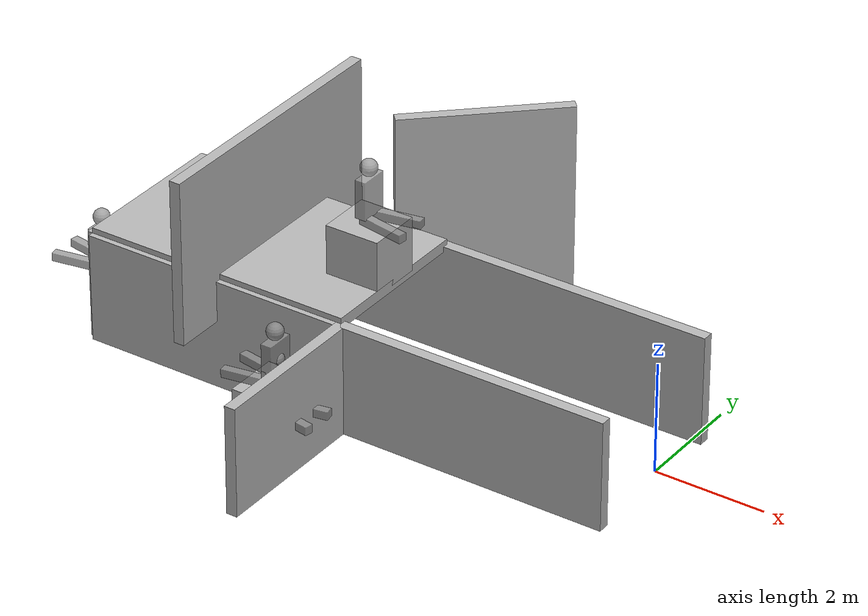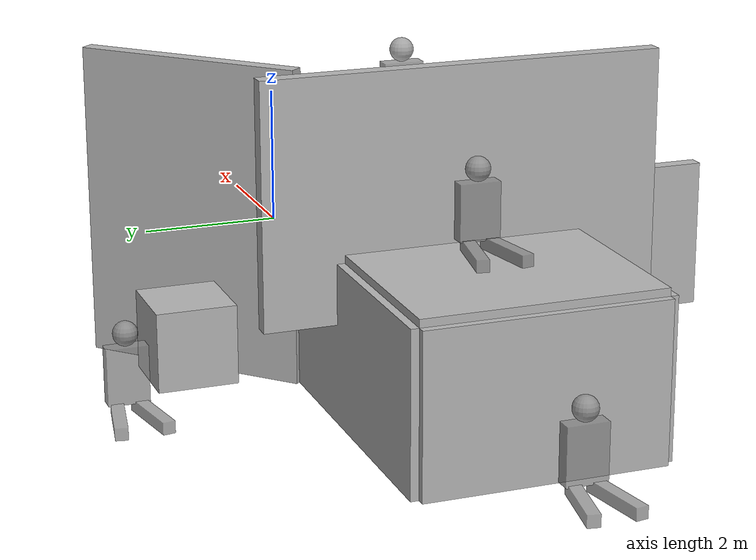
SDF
<sdf version="1.4">
 <world name="default">
  <scene><ambient>0.5 0.5 0.5 1</ambient><background>0.5 0.5 0.5 1</background><shadows>0</shadows></scene>
  <light name="directional_light_1" type="directional">
   <cast_shadows>0</cast_shadows>
   <pose>0 0 30 0.1 0.1 0</pose>
   <diffuse>1 1 1 1</diffuse>
   <specular>0.1 0.1 0.1 1</specular>
   <attenuation><range>300</range></attenuation>
   <direction>0.1 0.1 -1</direction>
  </light>
  <model name="human_1">
   <static>true</static>
   <include><uri>model://human</uri></include>
   <pose>-11 0 0.5 0 0 3.1415</pose>
   <damping>10.0</damping>
   <heartRate>80</heartRate>
   <respiratoryRate>15</respiratoryRate>
  </model>
  <model name="human_2">
   <static>true</static>
   <include><uri>model://human</uri></include>
   <pose>-5.5 0 3.25 0 0 0</pose>
   <damping>10.0</damping>
   <heartRate>80</heartRate>
   <respiratoryRate>15</respiratoryRate>
  </model>
  <model name="human_3">
   <static>true</static>
   <include><uri>model://human</uri></include>
   <pose>-5.5 -2.6 1.5 0 0 3.1415</pose>
   <damping>10.0</damping>
   <heartRate>120</heartRate>
   <respiratoryRate>22</respiratoryRate>
  </model>
  <model name="human_3">
   <static>true</static>
   <include><uri>model://human</uri></include>
   <pose>-5.5 -2.6 1 0 0 0</pose>
   <damping>10.0</damping>
   <heartRate>60</heartRate>
   <respiratoryRate>12</respiratoryRate>
  </model>
  <model name="human_4">
   <static>true</static>
   <include><uri>model://human</uri></include>
   <pose>-8 0 2.35 0 0 3.1415</pose>
   <damping>10.0</damping>
   <heartRate>90</heartRate>
   <respiratoryRate>18</respiratoryRate>
  </model>
  <model name="human_5">
   <static>true</static>
   <include><uri>model://human</uri></include>
   <pose>-7 4 0.5 0 0 3.1415</pose>
   <damping>10.0</damping>
   <heartRate>90</heartRate>
   <respiratoryRate>18</respiratoryRate>
  </model>
  <model name="wall_1">
   <static>true</static>
   <link name="wall_1_link">
    <pose>-5 -1.5 0.75 0 0 0</pose>
    <collision name="wall_1_collision"><geometry><box><size>10 0.2 2</size></box></geometry></collision>
    <visual name="wall_1_visual">
     <cast_shadows>false</cast_shadows>
     <geometry><box><size>10 0.2 2</size></box></geometry>
    </visual>
   </link>
   <damping>50</damping>
  </model>
  <model name="wall_2">
   <static>true</static>
   <link name="wall_2_link">
    <pose>-5 1.5 0.75 0 0 0</pose>
    <collision name="wall_2_collision"><geometry><box><size>10 0.2 2</size></box></geometry></collision>
    <visual name="wall_2_visual">
     <cast_shadows>false</cast_shadows>
     <geometry><box><size>10 0.2 2</size></box></geometry>
    </visual>
   </link>
   <damping>50</damping>
  </model>
  <model name="wall_3">
   <static>true</static>
   <link name="wall_3_link">
    <pose>-10 0 0.75 0 0 1.5708</pose>
    <collision name="wall_3_collision"><geometry><box><size>3 0.2 2</size></box></geometry></collision>
    <visual name="wall_3_visual">
     <cast_shadows>false</cast_shadows>
     <geometry><box><size>3 0.2 2</size></box></geometry>
    </visual>
   </link>
   <damping>50</damping>
  </model>
  <model name="wall_4">
   <static>true</static>
   <link name="wall_4_link">
    <pose>-5 -3 0.75 0 0 1.5708</pose>
    <collision name="wall_4_collision"><geometry><box><size>3 0.2 2</size></box></geometry></collision>
    <visual name="wall_4_visual">
     <cast_shadows>false</cast_shadows>
     <geometry><box><size>3 0.2 2</size></box></geometry>
    </visual>
   </link>
   <damping>50</damping>
  </model>
  <model name="wall_5">
   <static>true</static>
   <link name="wall_5_link">
    <pose>-5 2.6 1.75 0 0 0.7535</pose>
    <collision name="wall_5_collision"><geometry><box><size>3 0.2 4</size></box></geometry></collision>
    <visual name="wall_5_visual">
     <cast_shadows>false</cast_shadows>
     <geometry><box><size>3 0.2 4</size></box></geometry>
    </visual>
   </link>
   <damping>50</damping>
  </model>
  <model name="wall_6">
   <static>true</static>
   <link name="wall_6_link">
    <pose>-7.5 0 1.75 1.5708 0 0</pose>
    <collision name="wall_6_collision"><geometry><box><size>5 0.2 3</size></box></geometry></collision>
    <visual name="wall_6_visual">
     <cast_shadows>false</cast_shadows>
     <geometry><box><size>5 0.2 3</size></box></geometry>
    </visual>
   </link>
   <damping>50</damping>
  </model>
  <model name="wall_7">
   <static>true</static>
   <link name="wall_7_link">
    <pose>-7.5 0 2.5 0 0 1.5708</pose>
    <collision name="wall_7_collision"><geometry><box><size>3 0.2 3</size></box></geometry></collision>
    <visual name="wall_7_visual">
     <cast_shadows>false</cast_shadows>
     <geometry><box><size>5 0.2 3</size></box></geometry>
    </visual>
   </link>
   <damping>50</damping>
  </model>
  <model name="box_1">
   <static>true</static>
   <link name="box_1_link">
    <pose>-5.5 0 2.25 1.5708 0 0</pose>
    <collision name="box_1_collision"><geometry><box><size>1 1 1</size></box></geometry></collision>
    <visual name="box_1_visual">
     <cast_shadows>false</cast_shadows>
     <geometry><box><size>1 1 1</size></box></geometry>
    </visual>
   </link>
   <damping>20</damping>
  </model>
  <model name="box_2">
   <static>true</static>
   <link name="box_2_link">
    <pose>-6 3 0.5 1.5708 0 0</pose>
    <collision name="box_2_collision"><geometry><box><size>1 1 1</size></box></geometry></collision>
    <visual name="box_2_visual">
     <cast_shadows>false</cast_shadows>
     <geometry><box><size>1 1 1</size></box></geometry>
    </visual>
   </link>
   <damping>20</damping>
  </model>
  <model name="box_3">
   <static>true</static>
   <link name="box_3_link">
    <pose>-5.5 -2.6 0.5 1.5708 0 0</pose>
    <collision name="box_3_collision"><geometry><box><size>1 1 1</size></box></geometry></collision>
    <visual name="box_3_visual">
     <cast_shadows>false</cast_shadows>
     <geometry><box><size>1 1 1</size></box></geometry>
    </visual>
   </link>
   <damping>20</damping>
  </model>
  <model name="box_4">
   <static>true</static>
   <link name="box_4_link">
    <pose>-8 1 0.5 1.5708 0 0</pose>
    <collision name="box_4_collision"><geometry><box><size>1 1 1</size></box></geometry></collision>
    <visual name="box_4_visual">
     <cast_shadows>false</cast_shadows>
     <geometry><box><size>1 1 1</size></box></geometry>
    </visual>
   </link>
   <damping>20</damping>
  </model>
  <spherical_coordinates>
   <surface_model>EARTH_WGS84</surface_model>
   <latitude_deg>0</latitude_deg>
   <longitude_deg>0</longitude_deg>
   <elevation>0</elevation>
   <heading_deg>0</heading_deg>
  </spherical_coordinates>
 </world>
</sdf>

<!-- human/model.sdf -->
<sdf version='1.7'>
  <model name='human'>
    <link name='body_link'>
      <inertial>
        <mass>1</mass>
        <inertia>
          <ixx>0</ixx>
          <ixy>0</ixy>
          <ixz>0</ixz>
          <iyy>0</iyy>
          <iyz>0</iyz>
          <izz>0</izz>
        </inertia>
        <pose>0 0 0 0 -0 0</pose>
      </inertial>
      <pose>0 0 0 0 -0 0</pose>
      <gravity>1</gravity>
      <self_collide>0</self_collide>
      <kinematic>0</kinematic>
      <enable_wind>0</enable_wind>
      <visual name='body_visual'>
        <pose>0 0 0 0 -0 0</pose>
        <geometry>
          <box>
            <size>0.2 0.5 0.7</size>
          </box>
        </geometry>
        <material>
          <lighting>1</lighting>
          <script>
            <uri>file://media/materials/scripts/gazebo.material</uri>
            <name>Gazebo/Grey</name>
          </script>
          <shader type='pixel'>
            <normal_map>__default__</normal_map>
          </shader>
          <ambient>0.3 0.3 0.3 1</ambient>
          <diffuse>0.7 0.7 0.7 1</diffuse>
          <specular>0.01 0.01 0.01 1</specular>
          <emissive>0 0 0 1</emissive>
        </material>
        <transparency>0.2</transparency>
        <cast_shadows>1</cast_shadows>
      </visual>
      <collision name='body_collision'>
        <laser_retro>0</laser_retro>
        <max_contacts>10</max_contacts>
        <pose>0 0 0 0 -0 0</pose>
        <geometry>
          <box>
            <size>0.2 0.5 0.7</size>
          </box>
        </geometry>
        <surface>
          <friction>
            <ode>
              <mu>1</mu>
              <mu2>1</mu2>
              <fdir1>0 0 0</fdir1>
              <slip1>0</slip1>
              <slip2>0</slip2>
            </ode>
            <torsional>
              <coefficient>1</coefficient>
              <patch_radius>0</patch_radius>
              <surface_radius>0</surface_radius>
              <use_patch_radius>1</use_patch_radius>
              <ode>
                <slip>0</slip>
              </ode>
            </torsional>
          </friction>
          <bounce>
            <restitution_coefficient>0</restitution_coefficient>
            <threshold>1e+06</threshold>
          </bounce>
          <contact>
            <collide_without_contact>0</collide_without_contact>
            <collide_without_contact_bitmask>1</collide_without_contact_bitmask>
            <collide_bitmask>1</collide_bitmask>
            <ode>
              <soft_cfm>0</soft_cfm>
              <soft_erp>0.2</soft_erp>
              <kp>1e+13</kp>
              <kd>1</kd>
              <max_vel>0.01</max_vel>
              <min_depth>0</min_depth>
            </ode>
            <bullet>
              <split_impulse>1</split_impulse>
              <split_impulse_penetration_threshold>-0.01</split_impulse_penetration_threshold>
              <soft_cfm>0</soft_cfm>
              <soft_erp>0.2</soft_erp>
              <kp>1e+13</kp>
              <kd>1</kd>
            </bullet>
          </contact>
        </surface>
      </collision>
    </link>
    <link name='head_link'>
      <inertial>
        <mass>1</mass>
        <inertia>
          <ixx>0</ixx>
          <ixy>0</ixy>
          <ixz>0</ixz>
          <iyy>0</iyy>
          <iyz>0</iyz>
          <izz>0</izz>
        </inertia>
        <pose>0 0 0 0 -0 0</pose>
      </inertial>
      <pose relative_to='body_link'>0 0 0.5 0 -0 0</pose>
      <gravity>1</gravity>
      <self_collide>0</self_collide>
      <kinematic>0</kinematic>
      <enable_wind>0</enable_wind>
      <visual name='head_visual'>
        <pose>0 0 0 0 -0 0</pose>
        <geometry>
          <sphere>
            <radius>0.15</radius>
          </sphere>
        </geometry>
        <material>
          <lighting>1</lighting>
          <script>
            <uri>file://media/materials/scripts/gazebo.material</uri>
            <name>Gazebo/Grey</name>
          </script>
          <shader type='pixel'>
            <normal_map>__default__</normal_map>
          </shader>
          <ambient>0.3 0.3 0.3 1</ambient>
          <diffuse>0.7 0.7 0.7 1</diffuse>
          <specular>0.01 0.01 0.01 1</specular>
          <emissive>0 0 0 1</emissive>
        </material>
        <transparency>0.2</transparency>
        <cast_shadows>1</cast_shadows>
      </visual>
      <collision name='head_collision'>
        <laser_retro>0</laser_retro>
        <max_contacts>10</max_contacts>
        <pose>0 0 0 0 -0 0</pose>
        <geometry>
          <sphere>
            <radius>0.15</radius>
          </sphere>
        </geometry>
        <surface>
          <friction>
            <ode>
              <mu>1</mu>
              <mu2>1</mu2>
              <fdir1>0 0 0</fdir1>
              <slip1>0</slip1>
              <slip2>0</slip2>
            </ode>
            <torsional>
              <coefficient>1</coefficient>
              <patch_radius>0</patch_radius>
              <surface_radius>0</surface_radius>
              <use_patch_radius>1</use_patch_radius>
              <ode>
                <slip>0</slip>
              </ode>
            </torsional>
          </friction>
          <bounce>
            <restitution_coefficient>0</restitution_coefficient>
            <threshold>1e+06</threshold>
          </bounce>
          <contact>
            <collide_without_contact>0</collide_without_contact>
            <collide_without_contact_bitmask>1</collide_without_contact_bitmask>
            <collide_bitmask>1</collide_bitmask>
            <ode>
              <soft_cfm>0</soft_cfm>
              <soft_erp>0.2</soft_erp>
              <kp>1e+13</kp>
              <kd>1</kd>
              <max_vel>0.01</max_vel>
              <min_depth>0</min_depth>
            </ode>
            <bullet>
              <split_impulse>1</split_impulse>
              <split_impulse_penetration_threshold>-0.01</split_impulse_penetration_threshold>
              <soft_cfm>0</soft_cfm>
              <soft_erp>0.2</soft_erp>
              <kp>1e+13</kp>
              <kd>1</kd>
            </bullet>
          </contact>
        </surface>
      </collision>
    </link>
    <link name='l_leg_link'>
      <inertial>
        <mass>1</mass>
        <inertia>
          <ixx>0</ixx>
          <ixy>0</ixy>
          <ixz>0</ixz>
          <iyy>0</iyy>
          <iyz>0</iyz>
          <izz>0</izz>
        </inertia>
        <pose>0 0 0 0 -0 0</pose>
      </inertial>
      <pose relative_to='body_link'>0.4 0.2 -0.4 0 1.5708 0.174533</pose>
      <gravity>1</gravity>
      <self_collide>0</self_collide>
      <kinematic>0</kinematic>
      <enable_wind>0</enable_wind>
      <visual name='l_leg_visual'>
        <pose>0 0 0 0 -0 0</pose>
        <geometry>
          <box>
            <size>0.15 0.15 0.9</size>
          </box>
        </geometry>
        <material>
          <lighting>1</lighting>
          <script>
            <uri>file://media/materials/scripts/gazebo.material</uri>
            <name>Gazebo/Grey</name>
          </script>
          <shader type='pixel'>
            <normal_map>__default__</normal_map>
          </shader>
          <ambient>0.3 0.3 0.3 1</ambient>
          <diffuse>0.7 0.7 0.7 1</diffuse>
          <specular>0.01 0.01 0.01 1</specular>
          <emissive>0 0 0 1</emissive>
        </material>
        <transparency>0.2</transparency>
        <cast_shadows>1</cast_shadows>
      </visual>
      <collision name='l_leg_collision'>
        <laser_retro>0</laser_retro>
        <max_contacts>10</max_contacts>
        <pose>0 0 0 0 -0 0</pose>
        <geometry>
          <box>
            <size>0.15 0.15 0.4</size>
          </box>
        </geometry>
        <surface>
          <friction>
            <ode>
              <mu>1</mu>
              <mu2>1</mu2>
              <fdir1>0 0 0</fdir1>
              <slip1>0</slip1>
              <slip2>0</slip2>
            </ode>
            <torsional>
              <coefficient>1</coefficient>
              <patch_radius>0</patch_radius>
              <surface_radius>0</surface_radius>
              <use_patch_radius>1</use_patch_radius>
              <ode>
                <slip>0</slip>
              </ode>
            </torsional>
          </friction>
          <bounce>
            <restitution_coefficient>0</restitution_coefficient>
            <threshold>1e+06</threshold>
          </bounce>
          <contact>
            <collide_without_contact>0</collide_without_contact>
            <collide_without_contact_bitmask>1</collide_without_contact_bitmask>
            <collide_bitmask>1</collide_bitmask>
            <ode>
              <soft_cfm>0</soft_cfm>
              <soft_erp>0.2</soft_erp>
              <kp>1e+13</kp>
              <kd>1</kd>
              <max_vel>0.01</max_vel>
              <min_depth>0</min_depth>
            </ode>
            <bullet>
              <split_impulse>1</split_impulse>
              <split_impulse_penetration_threshold>-0.01</split_impulse_penetration_threshold>
              <soft_cfm>0</soft_cfm>
              <soft_erp>0.2</soft_erp>
              <kp>1e+13</kp>
              <kd>1</kd>
            </bullet>
          </contact>
        </surface>
      </collision>
    </link>
    <link name='r_leg_link'>
      <inertial>
        <mass>1</mass>
        <inertia>
          <ixx>0</ixx>
          <ixy>0</ixy>
          <ixz>0</ixz>
          <iyy>0</iyy>
          <iyz>0</iyz>
          <izz>0</izz>
        </inertia>
        <pose>0 0 0 0 -0 0</pose>
      </inertial>
      <pose relative_to='body_link'>0.4 -0.2 -0.4 0 1.5708 -0.174533</pose>
      <gravity>1</gravity>
      <self_collide>0</self_collide>
      <kinematic>0</kinematic>
      <enable_wind>0</enable_wind>
      <visual name='r_leg_visual'>
        <pose>0 0 0 0 -0 0</pose>
        <geometry>
          <box>
            <size>0.15 0.15 0.9</size>
          </box>
        </geometry>
        <material>
          <lighting>1</lighting>
          <script>
            <uri>file://media/materials/scripts/gazebo.material</uri>
            <name>Gazebo/Grey</name>
          </script>
          <shader type='pixel'>
            <normal_map>__default__</normal_map>
          </shader>
          <ambient>0.3 0.3 0.3 1</ambient>
          <diffuse>0.7 0.7 0.7 1</diffuse>
          <specular>0.01 0.01 0.01 1</specular>
          <emissive>0 0 0 1</emissive>
        </material>
        <transparency>0.2</transparency>
        <cast_shadows>1</cast_shadows>
      </visual>
      <collision name='l_leg_collision'>
        <laser_retro>0</laser_retro>
        <max_contacts>10</max_contacts>
        <pose>0 0 0 0 -0 0</pose>
        <geometry>
          <box>
            <size>0.15 0.15 0.4</size>
          </box>
        </geometry>
        <surface>
          <friction>
            <ode>
              <mu>1</mu>
              <mu2>1</mu2>
              <fdir1>0 0 0</fdir1>
              <slip1>0</slip1>
              <slip2>0</slip2>
            </ode>
            <torsional>
              <coefficient>1</coefficient>
              <patch_radius>0</patch_radius>
              <surface_radius>0</surface_radius>
              <use_patch_radius>1</use_patch_radius>
              <ode>
                <slip>0</slip>
              </ode>
            </torsional>
          </friction>
          <bounce>
            <restitution_coefficient>0</restitution_coefficient>
            <threshold>1e+06</threshold>
          </bounce>
          <contact>
            <collide_without_contact>0</collide_without_contact>
            <collide_without_contact_bitmask>1</collide_without_contact_bitmask>
            <collide_bitmask>1</collide_bitmask>
            <ode>
              <soft_cfm>0</soft_cfm>
              <soft_erp>0.2</soft_erp>
              <kp>1e+13</kp>
              <kd>1</kd>
              <max_vel>0.01</max_vel>
              <min_depth>0</min_depth>
            </ode>
            <bullet>
              <split_impulse>1</split_impulse>
              <split_impulse_penetration_threshold>-0.01</split_impulse_penetration_threshold>
              <soft_cfm>0</soft_cfm>
              <soft_erp>0.2</soft_erp>
              <kp>1e+13</kp>
              <kd>1</kd>
            </bullet>
          </contact>
        </surface>
      </collision>
    </link>
    <joint name='head_body_joint' type='fixed'>
      <parent>body_link</parent>
      <child>head_link</child>
    </joint>
    <joint name='lleg_body_joint' type='fixed'>
      <parent>body_link</parent>
      <child>l_leg_link</child>
    </joint>
    <joint name='rleg_body_joint' type='fixed'>
      <parent>body_link</parent>
      <child>r_leg_link</child>
    </joint>
    <static>0</static>
    <allow_auto_disable>1</allow_auto_disable>

  </model>
</sdf>
